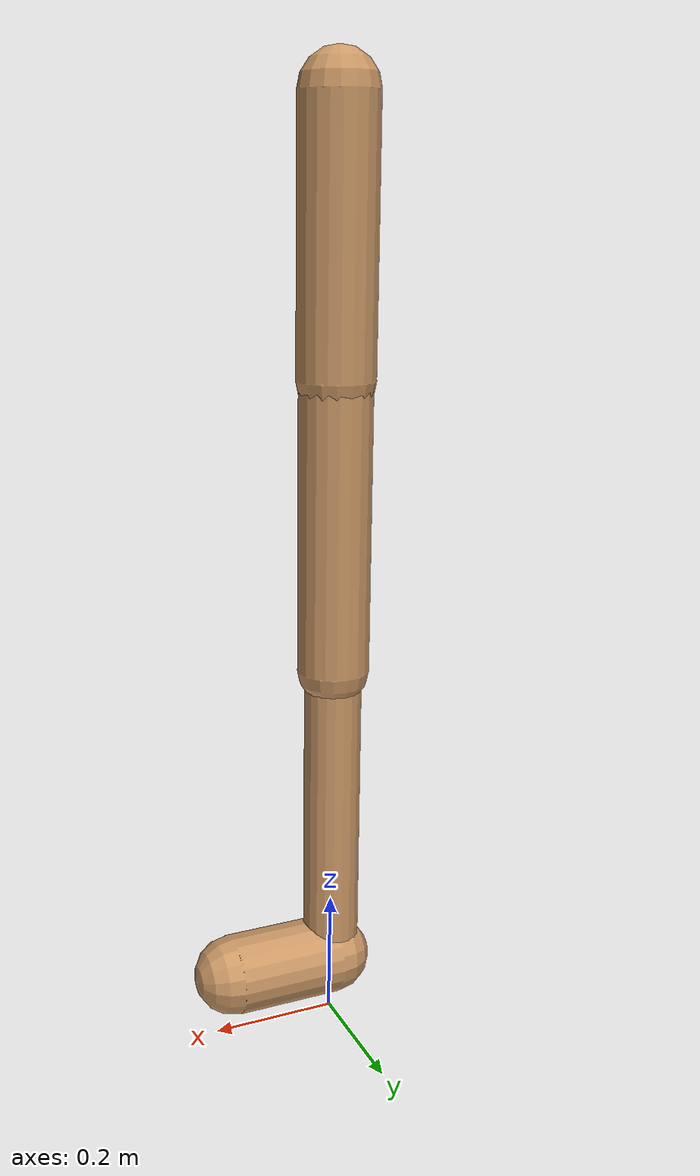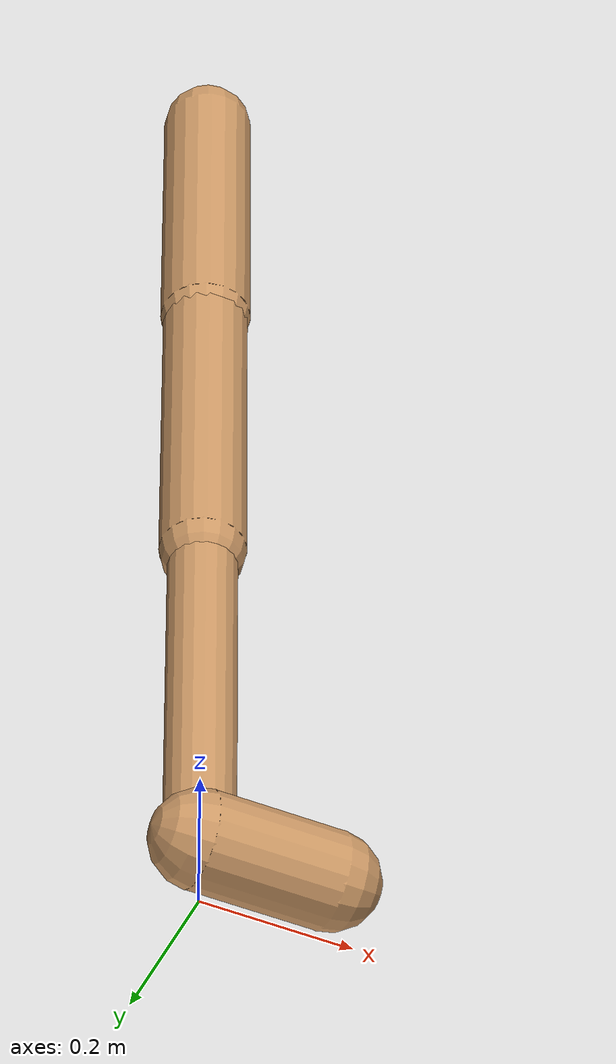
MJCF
<mujoco model="walker2d">
  <compiler angle="degree" coordinate="global" inertiafromgeom="true" />
  <default>
    <joint armature="0.01" damping=".1" limited="true" />
    <geom conaffinity="0" condim="3" contype="1" density="1000" friction="0.8 .1 .1" rgba="0.8 0.6 .4 1" />
  </default>
  <option integrator="RK4" timestep="0.002" />
  <worldbody>

    <body name="torso" pos="0 0 -0.002939178298442941">
      <joint armature="0" axis="1 0 0" damping="0" limited="false" name="ignorex" pos="0 0 0" stiffness="0" type="slide" />
      <joint armature="0" axis="0 0 1" damping="0" limited="false" name="ignorez" pos="0 0 0" ref="1.25" stiffness="0" type="slide" />
      <joint armature="0" axis="0 1 0" damping="0" limited="false" name="ignorey" pos="0 0 0" stiffness="0" type="hinge" />
      <geom fromto="0 0 1.45 0 0 1.05" name="torso_geom" size="0.05965130704828991" type="capsule" />
      <body name="thigh">
        <joint axis="0 -1 0" name="thigh_joint" pos="0 0 1.05" range="-150 0" type="hinge" />
        <geom fromto="0.0 0.0 1.05 0.0 0.0 0.601392242351894" name="thigh_geom" size="0.05602119593224924" type="capsule" />
        <body name="leg" pos="0.0 0.0 0.0013922423518940574">
          <joint axis="0 -1 0" name="leg_joint" pos="0 0 0.6" range="-150 0" type="hinge" />
          <geom fromto="0.0 0.0 0.6 0.0 0.0 0.10154693594654893" name="leg_geom" size="0.044816956745799386" type="capsule" />
          <body name="foot" pos="0.0 0.0 0.0015469359465489219">
            <joint axis="0 -1 0" name="foot_joint" pos="0 0 0.1" range="-45 45" type="hinge" />
            <geom fromto="0.0 0.0 0.1 0.17207236354066238 0.0 0.1" name="foot_geom" size="0.06286236559800587" type="capsule" />
          </body>
        </body>
      </body>

      <body name="thigh_left">
        <joint axis="0 -1 0" name="thigh_left_joint" pos="0 0 1.05" range="-150 0" type="hinge" />
        <geom fromto="0.0 0.0 1.05 0.0 0.0 0.601392242351894" name="thigh_left_geom" rgba=".7 .3 .6 1" size="0.05602119593224924" type="capsule" />
        <body name="leg_left" pos="0.0 0.0 0.0013922423518940574">
          <joint axis="0 -1 0" name="leg_left_joint" pos="0 0 0.6" range="-150 0" type="hinge" />
          <geom fromto="0.0 0.0 0.6 0.0 0.0 0.10154693594654893" name="leg_left_geom" rgba=".7 .3 .6 1" size="0.044816956745799386" type="capsule" />
          <body name="foot_left" pos="0.0 0.0 0.0015469359465489219">
            <joint axis="0 -1 0" name="foot_left_joint" pos="0 0 0.1" range="-45 45" type="hinge" />
            <geom fromto="0.0 0.0 0.1 0.17207236354066238 0.0 0.1" name="foot_left_geom" rgba=".7 .3 .6 1" size="0.06286236559800587" type="capsule" />
          </body>
        </body>
      </body>
    </body>
  </worldbody>
  <actuator>

    <motor ctrllimited="true" ctrlrange="-1.0 1.0" gear="100" joint="thigh_joint" />
    <motor ctrllimited="true" ctrlrange="-1.0 1.0" gear="100" joint="leg_joint" />
    <motor ctrllimited="true" ctrlrange="-1.0 1.0" gear="100" joint="foot_joint" />
    <motor ctrllimited="true" ctrlrange="-1.0 1.0" gear="100" joint="thigh_left_joint" />
    <motor ctrllimited="true" ctrlrange="-1.0 1.0" gear="100" joint="leg_left_joint" />
    <motor ctrllimited="true" ctrlrange="-1.0 1.0" gear="100" joint="foot_left_joint" />

  </actuator>
</mujoco>
